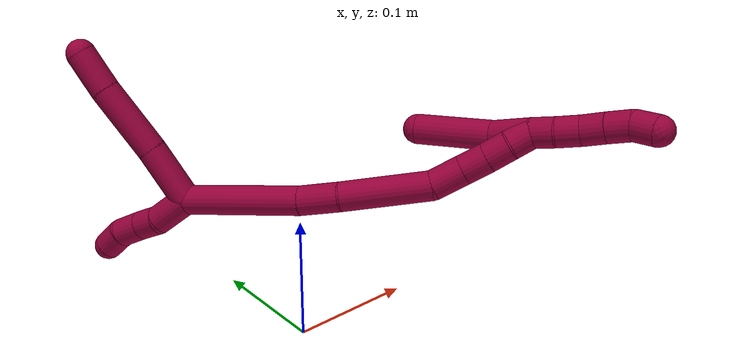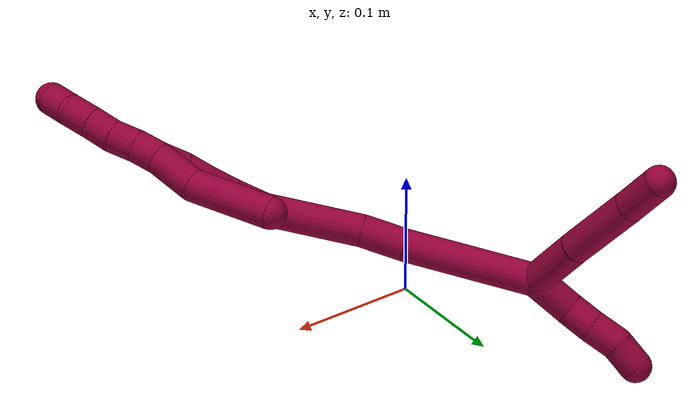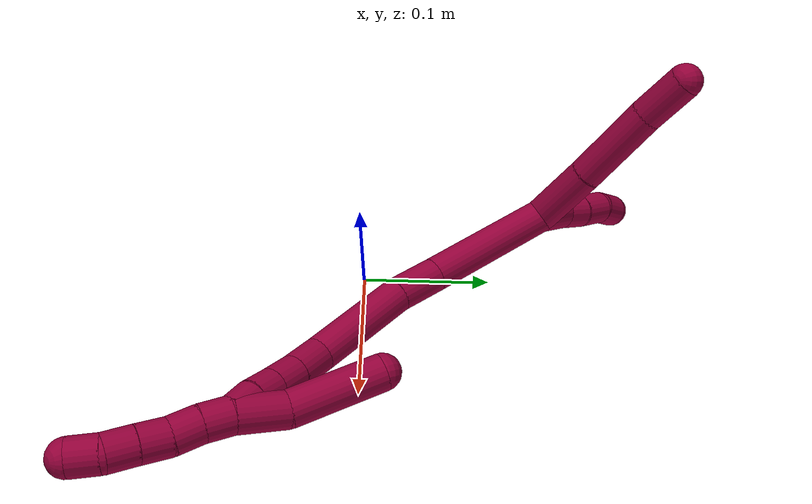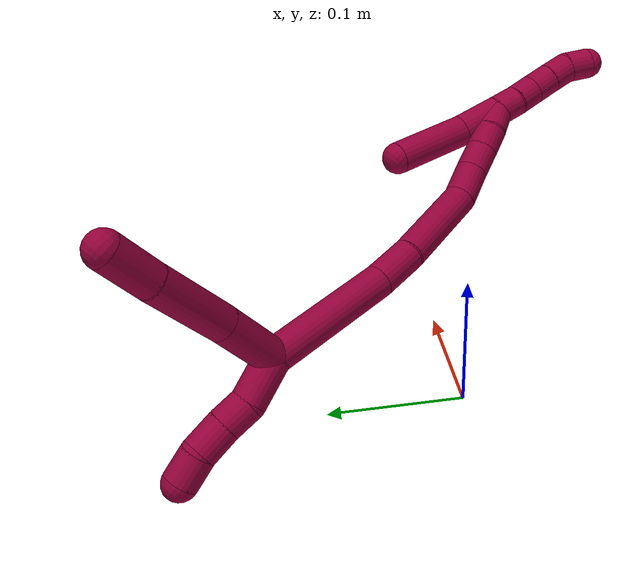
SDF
<sdf version="1.7">
 <world name="default">
  <model name="photoneo_s_sensor">
   <static>1</static>
   <pose>0 0 2 1.57079 1.57079 3.14159</pose>
   <link name="link">
    <inertial><mass>0.1</mass></inertial>
    <sensor name="sensor" type="depth">
     <update_rate>30</update_rate>
     <camera>
      <horizontal_fov>1.22</horizontal_fov>
      <image><width>1920</width><height>1200</height><format>B8G8R8</format></image>
      <clip><near>0.1</near><far>4</far></clip>
      <depth_camera><output>points</output></depth_camera>
     </camera>
     <plugin name="camera_plugin" filename="libgazebo_ros_depth_camera.so">
      <baseline>0.2</baseline>
      <alwaysOn>1</alwaysOn>
      <updateRate>0.0</updateRate>
      <cameraName>camera_ir</cameraName>
      <imageTopicName>/camera/color/image_raw</imageTopicName>
      <cameraInfoTopicName>/camera/color/camera_info</cameraInfoTopicName>
      <depthImageTopicName>/camera/depth/image_raw</depthImageTopicName>
      <depthImageCameraInfoTopicName>/camera/depth/camera_info</depthImageCameraInfoTopicName>
      <pointCloudTopicName>/camera/depth/points</pointCloudTopicName>
      <frameName>fr_optical</frameName>
      <pointCloudCutoff>0.1</pointCloudCutoff>
      <pointCloudCutoffMax>2.0</pointCloudCutoffMax>
      <distortionK1>0</distortionK1>
      <distortionK2>0</distortionK2>
      <distortionK3>0</distortionK3>
      <distortionT1>0</distortionT1>
      <distortionT2>0</distortionT2>
      <CxPrime>0</CxPrime>
      <Cx>0</Cx>
      <Cy>0</Cy>
      <focalLength>0</focalLength>
      <hackBaseline>0</hackBaseline>
     </plugin>
    </sensor>
   </link>
  </model>
  <model name="bin">
   <static>1</static>
   <link name="bottom">
    <collision name="collision-bottom">
     <pose>0 0 -0.01 0 -0 0</pose>
     <geometry><box><size>0.8 0.6 0.02</size></box></geometry>
     <surface>
      <friction><ode><mu>100</mu><mu2>100</mu2></ode></friction>
      <contact><collide_bitmask>65535</collide_bitmask></contact>
     </surface>
    </collision>
   </link>
   <link name="west_wall">
    <collision name="collision-west_wall">
     <pose>-0.41 0 0.1 0 -0 0</pose>
     <geometry><box><size>0.02 0.6 0.2</size></box></geometry>
     <surface>
      <friction><ode><mu>100</mu><mu2>100</mu2></ode></friction>
      <contact><collide_bitmask>65535</collide_bitmask></contact>
     </surface>
    </collision>
   </link>
   <link name="east_wall">
    <collision name="collision-east_wall">
     <pose>0.41 0 0.1 0 -0 0</pose>
     <geometry><box><size>0.02 0.6 0.2</size></box></geometry>
     <surface>
      <friction><ode><mu>100</mu><mu2>100</mu2></ode></friction>
      <contact><collide_bitmask>65535</collide_bitmask></contact>
     </surface>
    </collision>
   </link>
   <link name="south_wall">
    <collision name="collision-south_wall">
     <pose>0 -0.31 0.1 0 -0 0</pose>
     <geometry><box><size>0.8 0.02 0.2</size></box></geometry>
     <surface>
      <friction><ode><mu>100</mu><mu2>100</mu2></ode></friction>
      <contact><collide_bitmask>65535</collide_bitmask></contact>
     </surface>
    </collision>
   </link>
   <link name="north_wall">
    <collision name="collision-north_wall">
     <pose>0 0.31 0.1 0 -0 0</pose>
     <geometry><box><size>0.8 0.02 0.2</size></box></geometry>
     <surface>
      <friction><ode><mu>100</mu><mu2>100</mu2></ode></friction>
      <contact><collide_bitmask>65535</collide_bitmask></contact>
     </surface>
    </collision>
   </link>
  </model>
  <model name="8">
   <static>0</static>
   <link name="8">
    <collision name="collision-cylinder-e_1_2_8">
     <pose>-0.003105 0.024979 -0.003071 -1.69311 -0.122753 0.138718</pose>
     <geometry><cylinder><radius>0.0125</radius><length>0.050715</length></cylinder></geometry>
     <surface>
      <friction><ode><mu>1.16</mu><mu2>1.16</mu2><slip1>0</slip1><slip2>0</slip2></ode></friction>
      <contact><ode><kp>1e+06</kp><kd>1</kd><max_vel>0</max_vel><min_depth>0.001</min_depth></ode></contact>
     </surface>
    </collision>
    <visual name="visual-cylinder-e_1_2_8">
     <pose>-0.003105 0.024979 -0.003071 -1.69311 -0.122753 0.138718</pose>
     <geometry><cylinder><radius>0.0125</radius><length>0.050715</length></cylinder></geometry>
     <material><ambient>0.584314 0 0.227451 1</ambient></material>
    </visual>
    <collision name="collision-cylinder-e_2_8_9">
     <pose>-0.011533 0.080472 -0.011046 -1.73016 -0.17057 0.199992</pose>
     <geometry><cylinder><radius>0.0125</radius><length>0.062723</length></cylinder></geometry>
     <surface>
      <friction><ode><mu>1.16</mu><mu2>1.16</mu2><slip1>0</slip1><slip2>0</slip2></ode></friction>
      <contact><ode><kp>1e+06</kp><kd>1</kd><max_vel>0</max_vel><min_depth>0.001</min_depth></ode></contact>
     </surface>
    </collision>
    <visual name="visual-cylinder-e_2_8_9">
     <pose>-0.011533 0.080472 -0.011046 -1.73016 -0.17057 0.199992</pose>
     <geometry><cylinder><radius>0.0125</radius><length>0.062723</length></cylinder></geometry>
     <material><ambient>0.584314 0 0.227451 1</ambient></material>
    </visual>
    <collision name="collision-cylinder-e_3_9_6">
     <pose>-0.018635 0.129043 -0.01819 -1.6942 -0.097417 0.110222</pose>
     <geometry><cylinder><radius>0.0125</radius><length>0.036562</length></cylinder></geometry>
     <surface>
      <friction><ode><mu>1.16</mu><mu2>1.16</mu2><slip1>0</slip1><slip2>0</slip2></ode></friction>
      <contact><ode><kp>1e+06</kp><kd>1</kd><max_vel>0</max_vel><min_depth>0.001</min_depth></ode></contact>
     </surface>
    </collision>
    <visual name="visual-cylinder-e_3_9_6">
     <pose>-0.018635 0.129043 -0.01819 -1.6942 -0.097417 0.110222</pose>
     <geometry><cylinder><radius>0.0125</radius><length>0.036562</length></cylinder></geometry>
     <material><ambient>0.584314 0 0.227451 1</ambient></material>
    </visual>
    <collision name="collision-cylinder-e_1_2_10">
     <pose>-0.001703 -0.002845 -0.016559 2.97144 -0.100988 -1.06989</pose>
     <geometry><cylinder><radius>0.0125</radius><length>0.033775</length></cylinder></geometry>
     <surface>
      <friction><ode><mu>1.16</mu><mu2>1.16</mu2><slip1>0</slip1><slip2>0</slip2></ode></friction>
      <contact><ode><kp>1e+06</kp><kd>1</kd><max_vel>0</max_vel><min_depth>0.001</min_depth></ode></contact>
     </surface>
    </collision>
    <visual name="visual-cylinder-e_1_2_10">
     <pose>-0.001703 -0.002845 -0.016559 2.97144 -0.100988 -1.06989</pose>
     <geometry><cylinder><radius>0.0125</radius><length>0.033775</length></cylinder></geometry>
     <material><ambient>0.584314 0 0.227451 1</ambient></material>
    </visual>
    <collision name="collision-cylinder-e_2_10_11">
     <pose>-0.00249 -0.004644 -0.043396 -3.04013 0.08838 -1.433</pose>
     <geometry><cylinder><radius>0.0125</radius><length>0.020744</length></cylinder></geometry>
     <surface>
      <friction><ode><mu>1.16</mu><mu2>1.16</mu2><slip1>0</slip1><slip2>0</slip2></ode></friction>
      <contact><ode><kp>1e+06</kp><kd>1</kd><max_vel>0</max_vel><min_depth>0.001</min_depth></ode></contact>
     </surface>
    </collision>
    <visual name="visual-cylinder-e_2_10_11">
     <pose>-0.00249 -0.004644 -0.043396 -3.04013 0.08838 -1.433</pose>
     <geometry><cylinder><radius>0.0125</radius><length>0.020744</length></cylinder></geometry>
     <material><ambient>0.584314 0 0.227451 1</ambient></material>
    </visual>
    <collision name="collision-cylinder-e_3_11_12">
     <pose>-0.001808 -0.002873 -0.065358 -3.07964 -0.019988 0.624018</pose>
     <geometry><cylinder><radius>0.0125</radius><length>0.023416</length></cylinder></geometry>
     <surface>
      <friction><ode><mu>1.16</mu><mu2>1.16</mu2><slip1>0</slip1><slip2>0</slip2></ode></friction>
      <contact><ode><kp>1e+06</kp><kd>1</kd><max_vel>0</max_vel><min_depth>0.001</min_depth></ode></contact>
     </surface>
    </collision>
    <visual name="visual-cylinder-e_3_11_12">
     <pose>-0.001808 -0.002873 -0.065358 -3.07964 -0.019988 0.624018</pose>
     <geometry><cylinder><radius>0.0125</radius><length>0.023416</length></cylinder></geometry>
     <material><ambient>0.584314 0 0.227451 1</ambient></material>
    </visual>
    <collision name="collision-cylinder-e_4_12_5">
     <pose>-0.001136 -0.004664 -0.087745 2.9107 0.082217 0.681709</pose>
     <geometry><cylinder><radius>0.0125</radius><length>0.022064</length></cylinder></geometry>
     <surface>
      <friction><ode><mu>1.16</mu><mu2>1.16</mu2><slip1>0</slip1><slip2>0</slip2></ode></friction>
      <contact><ode><kp>1e+06</kp><kd>1</kd><max_vel>0</max_vel><min_depth>0.001</min_depth></ode></contact>
     </surface>
    </collision>
    <visual name="visual-cylinder-e_4_12_5">
     <pose>-0.001136 -0.004664 -0.087745 2.9107 0.082217 0.681709</pose>
     <geometry><cylinder><radius>0.0125</radius><length>0.022064</length></cylinder></geometry>
     <material><ambient>0.584314 0 0.227451 1</ambient></material>
    </visual>
    <collision name="collision-cylinder-e_1_2_13">
     <pose>0.009035 -0.020044 0.045545 0.414582 0.179606 0.037871</pose>
     <geometry><cylinder><radius>0.0125</radius><length>0.101148</length></cylinder></geometry>
     <surface>
      <friction><ode><mu>1.16</mu><mu2>1.16</mu2><slip1>0</slip1><slip2>0</slip2></ode></friction>
      <contact><ode><kp>1e+06</kp><kd>1</kd><max_vel>0</max_vel><min_depth>0.001</min_depth></ode></contact>
     </surface>
    </collision>
    <visual name="visual-cylinder-e_1_2_13">
     <pose>0.009035 -0.020044 0.045545 0.414582 0.179606 0.037871</pose>
     <geometry><cylinder><radius>0.0125</radius><length>0.101148</length></cylinder></geometry>
     <material><ambient>0.584314 0 0.227451 1</ambient></material>
    </visual>
    <collision name="collision-cylinder-e_2_13_14">
     <pose>0.021239 -0.045249 0.107149 0.31099 0.185748 0.0292</pose>
     <geometry><cylinder><radius>0.0125</radius><length>0.034327</length></cylinder></geometry>
     <surface>
      <friction><ode><mu>1.16</mu><mu2>1.16</mu2><slip1>0</slip1><slip2>0</slip2></ode></friction>
      <contact><ode><kp>1e+06</kp><kd>1</kd><max_vel>0</max_vel><min_depth>0.001</min_depth></ode></contact>
     </surface>
    </collision>
    <visual name="visual-cylinder-e_2_13_14">
     <pose>0.021239 -0.045249 0.107149 0.31099 0.185748 0.0292</pose>
     <geometry><cylinder><radius>0.0125</radius><length>0.034327</length></cylinder></geometry>
     <material><ambient>0.584314 0 0.227451 1</ambient></material>
    </visual>
    <collision name="collision-cylinder-e_3_14_15">
     <pose>0.03659 -0.06146 0.157152 0.314696 0.328845 0.052637</pose>
     <geometry><cylinder><radius>0.0125</radius><length>0.075436</length></cylinder></geometry>
     <surface>
      <friction><ode><mu>1.16</mu><mu2>1.16</mu2><slip1>0</slip1><slip2>0</slip2></ode></friction>
      <contact><ode><kp>1e+06</kp><kd>1</kd><max_vel>0</max_vel><min_depth>0.001</min_depth></ode></contact>
     </surface>
    </collision>
    <visual name="visual-cylinder-e_3_14_15">
     <pose>0.03659 -0.06146 0.157152 0.314696 0.328845 0.052637</pose>
     <geometry><cylinder><radius>0.0125</radius><length>0.075436</length></cylinder></geometry>
     <material><ambient>0.584314 0 0.227451 1</ambient></material>
    </visual>
    <collision name="collision-cylinder-e_4_15_16">
     <pose>0.053272 -0.071852 0.203988 -0.050917 0.335499 -0.008624</pose>
     <geometry><cylinder><radius>0.0125</radius><length>0.027342</length></cylinder></geometry>
     <surface>
      <friction><ode><mu>1.16</mu><mu2>1.16</mu2><slip1>0</slip1><slip2>0</slip2></ode></friction>
      <contact><ode><kp>1e+06</kp><kd>1</kd><max_vel>0</max_vel><min_depth>0.001</min_depth></ode></contact>
     </surface>
    </collision>
    <visual name="visual-cylinder-e_4_15_16">
     <pose>0.053272 -0.071852 0.203988 -0.050917 0.335499 -0.008624</pose>
     <geometry><cylinder><radius>0.0125</radius><length>0.027342</length></cylinder></geometry>
     <material><ambient>0.584314 0 0.227451 1</ambient></material>
    </visual>
    <collision name="collision-cylinder-e_5_16_17">
     <pose>0.060757 -0.070573 0.227312 -0.059578 0.27811 -0.008341</pose>
     <geometry><cylinder><radius>0.0125</radius><length>0.021735</length></cylinder></geometry>
     <surface>
      <friction><ode><mu>1.16</mu><mu2>1.16</mu2><slip1>0</slip1><slip2>0</slip2></ode></friction>
      <contact><ode><kp>1e+06</kp><kd>1</kd><max_vel>0</max_vel><min_depth>0.001</min_depth></ode></contact>
     </surface>
    </collision>
    <visual name="visual-cylinder-e_5_16_17">
     <pose>0.060757 -0.070573 0.227312 -0.059578 0.27811 -0.008341</pose>
     <geometry><cylinder><radius>0.0125</radius><length>0.021735</length></cylinder></geometry>
     <material><ambient>0.584314 0 0.227451 1</ambient></material>
    </visual>
    <collision name="collision-cylinder-e_6_17_18">
     <pose>0.066285 -0.069001 0.247372 -0.098349 0.257205 -0.012728</pose>
     <geometry><cylinder><radius>0.0125</radius><length>0.020009</length></cylinder></geometry>
     <surface>
      <friction><ode><mu>1.16</mu><mu2>1.16</mu2><slip1>0</slip1><slip2>0</slip2></ode></friction>
      <contact><ode><kp>1e+06</kp><kd>1</kd><max_vel>0</max_vel><min_depth>0.001</min_depth></ode></contact>
     </surface>
    </collision>
    <visual name="visual-cylinder-e_6_17_18">
     <pose>0.066285 -0.069001 0.247372 -0.098349 0.257205 -0.012728</pose>
     <geometry><cylinder><radius>0.0125</radius><length>0.020009</length></cylinder></geometry>
     <material><ambient>0.584314 0 0.227451 1</ambient></material>
    </visual>
    <collision name="collision-cylinder-e_7_18_1">
     <pose>0.072719 -0.067209 0.266176 -0.091439 0.399357 -0.018517</pose>
     <geometry><cylinder><radius>0.0125</radius><length>0.020003</length></cylinder></geometry>
     <surface>
      <friction><ode><mu>1.16</mu><mu2>1.16</mu2><slip1>0</slip1><slip2>0</slip2></ode></friction>
      <contact><ode><kp>1e+06</kp><kd>1</kd><max_vel>0</max_vel><min_depth>0.001</min_depth></ode></contact>
     </surface>
    </collision>
    <visual name="visual-cylinder-e_7_18_1">
     <pose>0.072719 -0.067209 0.266176 -0.091439 0.399357 -0.018517</pose>
     <geometry><cylinder><radius>0.0125</radius><length>0.020003</length></cylinder></geometry>
     <material><ambient>0.584314 0 0.227451 1</ambient></material>
    </visual>
    <collision name="collision-cylinder-e_1_1_19">
     <pose>0.076016 -0.069771 0.284737 0.347892 -0.059155 -0.010398</pose>
     <geometry><cylinder><radius>0.0125</radius><length>0.02</length></cylinder></geometry>
     <surface>
      <friction><ode><mu>1.16</mu><mu2>1.16</mu2><slip1>0</slip1><slip2>0</slip2></ode></friction>
      <contact><ode><kp>1e+06</kp><kd>1</kd><max_vel>0</max_vel><min_depth>0.001</min_depth></ode></contact>
     </surface>
    </collision>
    <visual name="visual-cylinder-e_1_1_19">
     <pose>0.076016 -0.069771 0.284737 0.347892 -0.059155 -0.010398</pose>
     <geometry><cylinder><radius>0.0125</radius><length>0.02</length></cylinder></geometry>
     <material><ambient>0.584314 0 0.227451 1</ambient></material>
    </visual>
    <collision name="collision-cylinder-e_2_19_20">
     <pose>0.07614 -0.076488 0.303529 0.338593 0.071512 0.012229</pose>
     <geometry><cylinder><radius>0.0125</radius><length>0.02</length></cylinder></geometry>
     <surface>
      <friction><ode><mu>1.16</mu><mu2>1.16</mu2><slip1>0</slip1><slip2>0</slip2></ode></friction>
      <contact><ode><kp>1e+06</kp><kd>1</kd><max_vel>0</max_vel><min_depth>0.001</min_depth></ode></contact>
     </surface>
    </collision>
    <visual name="visual-cylinder-e_2_19_20">
     <pose>0.07614 -0.076488 0.303529 0.338593 0.071512 0.012229</pose>
     <geometry><cylinder><radius>0.0125</radius><length>0.02</length></cylinder></geometry>
     <material><ambient>0.584314 0 0.227451 1</ambient></material>
    </visual>
    <collision name="collision-cylinder-e_3_20_21">
     <pose>0.076076 -0.082411 0.322559 0.264896 -0.077875 -0.01038</pose>
     <geometry><cylinder><radius>0.0125</radius><length>0.02</length></cylinder></geometry>
     <surface>
      <friction><ode><mu>1.16</mu><mu2>1.16</mu2><slip1>0</slip1><slip2>0</slip2></ode></friction>
      <contact><ode><kp>1e+06</kp><kd>1</kd><max_vel>0</max_vel><min_depth>0.001</min_depth></ode></contact>
     </surface>
    </collision>
    <visual name="visual-cylinder-e_3_20_21">
     <pose>0.076076 -0.082411 0.322559 0.264896 -0.077875 -0.01038</pose>
     <geometry><cylinder><radius>0.0125</radius><length>0.02</length></cylinder></geometry>
     <material><ambient>0.584314 0 0.227451 1</ambient></material>
    </visual>
    <collision name="collision-cylinder-e_4_21_22">
     <pose>0.074682 -0.087902 0.341737 0.292844 -0.06168 -0.009099</pose>
     <geometry><cylinder><radius>0.0125</radius><length>0.02</length></cylinder></geometry>
     <surface>
      <friction><ode><mu>1.16</mu><mu2>1.16</mu2><slip1>0</slip1><slip2>0</slip2></ode></friction>
      <contact><ode><kp>1e+06</kp><kd>1</kd><max_vel>0</max_vel><min_depth>0.001</min_depth></ode></contact>
     </surface>
    </collision>
    <visual name="visual-cylinder-e_4_21_22">
     <pose>0.074682 -0.087902 0.341737 0.292844 -0.06168 -0.009099</pose>
     <geometry><cylinder><radius>0.0125</radius><length>0.02</length></cylinder></geometry>
     <material><ambient>0.584314 0 0.227451 1</ambient></material>
    </visual>
    <collision name="collision-cylinder-e_5_22_4">
     <pose>0.071334 -0.095883 0.35945 0.558745 -0.276643 -0.07983</pose>
     <geometry><cylinder><radius>0.0125</radius><length>0.02</length></cylinder></geometry>
     <surface>
      <friction><ode><mu>1.16</mu><mu2>1.16</mu2><slip1>0</slip1><slip2>0</slip2></ode></friction>
      <contact><ode><kp>1e+06</kp><kd>1</kd><max_vel>0</max_vel><min_depth>0.001</min_depth></ode></contact>
     </surface>
    </collision>
    <visual name="visual-cylinder-e_5_22_4">
     <pose>0.071334 -0.095883 0.35945 0.558745 -0.276643 -0.07983</pose>
     <geometry><cylinder><radius>0.0125</radius><length>0.02</length></cylinder></geometry>
     <material><ambient>0.584314 0 0.227451 1</ambient></material>
    </visual>
    <collision name="collision-cylinder-e_1_1_23">
     <pose>0.080379 -0.061531 0.259016 -2.85371 0.217855 -1.29276</pose>
     <geometry><cylinder><radius>0.0125</radius><length>0.034899</length></cylinder></geometry>
     <surface>
      <friction><ode><mu>1.16</mu><mu2>1.16</mu2><slip1>0</slip1><slip2>0</slip2></ode></friction>
      <contact><ode><kp>1e+06</kp><kd>1</kd><max_vel>0</max_vel><min_depth>0.001</min_depth></ode></contact>
     </surface>
    </collision>
    <visual name="visual-cylinder-e_1_1_23">
     <pose>0.080379 -0.061531 0.259016 -2.85371 0.217855 -1.29276</pose>
     <geometry><cylinder><radius>0.0125</radius><length>0.034899</length></cylinder></geometry>
     <material><ambient>0.584314 0 0.227451 1</ambient></material>
    </visual>
    <collision name="collision-cylinder-e_2_23_3">
     <pose>0.083603 -0.041713 0.213787 -2.66327 -0.016829 0.068992</pose>
     <geometry><cylinder><radius>0.0125</radius><length>0.065101</length></cylinder></geometry>
     <surface>
      <friction><ode><mu>1.16</mu><mu2>1.16</mu2><slip1>0</slip1><slip2>0</slip2></ode></friction>
      <contact><ode><kp>1e+06</kp><kd>1</kd><max_vel>0</max_vel><min_depth>0.001</min_depth></ode></contact>
     </surface>
    </collision>
    <visual name="visual-cylinder-e_2_23_3">
     <pose>0.083603 -0.041713 0.213787 -2.66327 -0.016829 0.068992</pose>
     <geometry><cylinder><radius>0.0125</radius><length>0.065101</length></cylinder></geometry>
     <material><ambient>0.584314 0 0.227451 1</ambient></material>
    </visual>
    <collision name="collision-sphere-3">
     <pose>0.083055 -0.026732 0.184894 0 -0 0</pose>
     <geometry><sphere><radius>0.0125</radius></sphere></geometry>
     <surface>
      <friction><ode><mu>1.16</mu><mu2>1.16</mu2><slip1>0</slip1><slip2>0</slip2></ode></friction>
      <contact><ode><kp>1e+06</kp><kd>1</kd><max_vel>0</max_vel><min_depth>0.001</min_depth></ode></contact>
     </surface>
    </collision>
    <visual name="visual-sphere-3">
     <pose>0.083055 -0.026732 0.184894 0 -0 0</pose>
     <geometry><sphere><radius>0.0125</radius></sphere></geometry>
     <material><ambient>0.584314 0 0.227451 1</ambient></material>
    </visual>
    <collision name="collision-sphere-23">
     <pose>0.08415 -0.056694 0.242681 0 -0 0</pose>
     <geometry><sphere><radius>0.0125</radius></sphere></geometry>
     <surface>
      <friction><ode><mu>1.16</mu><mu2>1.16</mu2><slip1>0</slip1><slip2>0</slip2></ode></friction>
      <contact><ode><kp>1e+06</kp><kd>1</kd><max_vel>0</max_vel><min_depth>0.001</min_depth></ode></contact>
     </surface>
    </collision>
    <visual name="visual-sphere-23">
     <pose>0.08415 -0.056694 0.242681 0 -0 0</pose>
     <geometry><sphere><radius>0.0125</radius></sphere></geometry>
     <material><ambient>0.584314 0 0.227451 1</ambient></material>
    </visual>
    <collision name="collision-sphere-4">
     <pose>0.068603 -0.100983 0.367607 0 -0 0</pose>
     <geometry><sphere><radius>0.0125</radius></sphere></geometry>
     <surface>
      <friction><ode><mu>1.16</mu><mu2>1.16</mu2><slip1>0</slip1><slip2>0</slip2></ode></friction>
      <contact><ode><kp>1e+06</kp><kd>1</kd><max_vel>0</max_vel><min_depth>0.001</min_depth></ode></contact>
     </surface>
    </collision>
    <visual name="visual-sphere-4">
     <pose>0.068603 -0.100983 0.367607 0 -0 0</pose>
     <geometry><sphere><radius>0.0125</radius></sphere></geometry>
     <material><ambient>0.584314 0 0.227451 1</ambient></material>
    </visual>
    <collision name="collision-sphere-22">
     <pose>0.074065 -0.090784 0.351293 0 -0 0</pose>
     <geometry><sphere><radius>0.0125</radius></sphere></geometry>
     <surface>
      <friction><ode><mu>1.16</mu><mu2>1.16</mu2><slip1>0</slip1><slip2>0</slip2></ode></friction>
      <contact><ode><kp>1e+06</kp><kd>1</kd><max_vel>0</max_vel><min_depth>0.001</min_depth></ode></contact>
     </surface>
    </collision>
    <visual name="visual-sphere-22">
     <pose>0.074065 -0.090784 0.351293 0 -0 0</pose>
     <geometry><sphere><radius>0.0125</radius></sphere></geometry>
     <material><ambient>0.584314 0 0.227451 1</ambient></material>
    </visual>
    <collision name="collision-sphere-21">
     <pose>0.075298 -0.085021 0.332181 0 -0 0</pose>
     <geometry><sphere><radius>0.0125</radius></sphere></geometry>
     <surface>
      <friction><ode><mu>1.16</mu><mu2>1.16</mu2><slip1>0</slip1><slip2>0</slip2></ode></friction>
      <contact><ode><kp>1e+06</kp><kd>1</kd><max_vel>0</max_vel><min_depth>0.001</min_depth></ode></contact>
     </surface>
    </collision>
    <visual name="visual-sphere-21">
     <pose>0.075298 -0.085021 0.332181 0 -0 0</pose>
     <geometry><sphere><radius>0.0125</radius></sphere></geometry>
     <material><ambient>0.584314 0 0.227451 1</ambient></material>
    </visual>
    <collision name="collision-sphere-20">
     <pose>0.076854 -0.079801 0.312937 0 -0 0</pose>
     <geometry><sphere><radius>0.0125</radius></sphere></geometry>
     <surface>
      <friction><ode><mu>1.16</mu><mu2>1.16</mu2><slip1>0</slip1><slip2>0</slip2></ode></friction>
      <contact><ode><kp>1e+06</kp><kd>1</kd><max_vel>0</max_vel><min_depth>0.001</min_depth></ode></contact>
     </surface>
    </collision>
    <visual name="visual-sphere-20">
     <pose>0.076854 -0.079801 0.312937 0 -0 0</pose>
     <geometry><sphere><radius>0.0125</radius></sphere></geometry>
     <material><ambient>0.584314 0 0.227451 1</ambient></material>
    </visual>
    <collision name="collision-sphere-11">
     <pose>-0.001574 -0.003597 -0.053675 0 -0 0</pose>
     <geometry><sphere><radius>0.0125</radius></sphere></geometry>
     <surface>
      <friction><ode><mu>1.16</mu><mu2>1.16</mu2><slip1>0</slip1><slip2>0</slip2></ode></friction>
      <contact><ode><kp>1e+06</kp><kd>1</kd><max_vel>0</max_vel><min_depth>0.001</min_depth></ode></contact>
     </surface>
    </collision>
    <visual name="visual-sphere-11">
     <pose>-0.001574 -0.003597 -0.053675 0 -0 0</pose>
     <geometry><sphere><radius>0.0125</radius></sphere></geometry>
     <material><ambient>0.584314 0 0.227451 1</ambient></material>
    </visual>
    <collision name="collision-sphere-10">
     <pose>-0.003405 -0.00569 -0.033118 0 -0 0</pose>
     <geometry><sphere><radius>0.0125</radius></sphere></geometry>
     <surface>
      <friction><ode><mu>1.16</mu><mu2>1.16</mu2><slip1>0</slip1><slip2>0</slip2></ode></friction>
      <contact><ode><kp>1e+06</kp><kd>1</kd><max_vel>0</max_vel><min_depth>0.001</min_depth></ode></contact>
     </surface>
    </collision>
    <visual name="visual-sphere-10">
     <pose>-0.003405 -0.00569 -0.033118 0 -0 0</pose>
     <geometry><sphere><radius>0.0125</radius></sphere></geometry>
     <material><ambient>0.584314 0 0.227451 1</ambient></material>
    </visual>
    <collision name="collision-sphere-6">
     <pose>-0.020413 0.147099 -0.02043 0 -0 0</pose>
     <geometry><sphere><radius>0.0125</radius></sphere></geometry>
     <surface>
      <friction><ode><mu>1.16</mu><mu2>1.16</mu2><slip1>0</slip1><slip2>0</slip2></ode></friction>
      <contact><ode><kp>1e+06</kp><kd>1</kd><max_vel>0</max_vel><min_depth>0.001</min_depth></ode></contact>
     </surface>
    </collision>
    <visual name="visual-sphere-6">
     <pose>-0.020413 0.147099 -0.02043 0 -0 0</pose>
     <geometry><sphere><radius>0.0125</radius></sphere></geometry>
     <material><ambient>0.584314 0 0.227451 1</ambient></material>
    </visual>
    <collision name="collision-sphere-9">
     <pose>-0.016857 0.110986 -0.01595 0 -0 0</pose>
     <geometry><sphere><radius>0.0125</radius></sphere></geometry>
     <surface>
      <friction><ode><mu>1.16</mu><mu2>1.16</mu2><slip1>0</slip1><slip2>0</slip2></ode></friction>
      <contact><ode><kp>1e+06</kp><kd>1</kd><max_vel>0</max_vel><min_depth>0.001</min_depth></ode></contact>
     </surface>
    </collision>
    <visual name="visual-sphere-9">
     <pose>-0.016857 0.110986 -0.01595 0 -0 0</pose>
     <geometry><sphere><radius>0.0125</radius></sphere></geometry>
     <material><ambient>0.584314 0 0.227451 1</ambient></material>
    </visual>
    <collision name="collision-sphere-2">
     <geometry><sphere><radius>0.0125</radius></sphere></geometry>
     <surface>
      <friction><ode><mu>1.16</mu><mu2>1.16</mu2><slip1>0</slip1><slip2>0</slip2></ode></friction>
      <contact><ode><kp>1e+06</kp><kd>1</kd><max_vel>0</max_vel><min_depth>0.001</min_depth></ode></contact>
     </surface>
    </collision>
    <visual name="visual-sphere-2">
     <geometry><sphere><radius>0.0125</radius></sphere></geometry>
     <material><ambient>0.584314 0 0.227451 1</ambient></material>
    </visual>
    <collision name="collision-sphere-19">
     <pose>0.075425 -0.073175 0.294121 0 -0 0</pose>
     <geometry><sphere><radius>0.0125</radius></sphere></geometry>
     <surface>
      <friction><ode><mu>1.16</mu><mu2>1.16</mu2><slip1>0</slip1><slip2>0</slip2></ode></friction>
      <contact><ode><kp>1e+06</kp><kd>1</kd><max_vel>0</max_vel><min_depth>0.001</min_depth></ode></contact>
     </surface>
    </collision>
    <visual name="visual-sphere-19">
     <pose>0.075425 -0.073175 0.294121 0 -0 0</pose>
     <geometry><sphere><radius>0.0125</radius></sphere></geometry>
     <material><ambient>0.584314 0 0.227451 1</ambient></material>
    </visual>
    <collision name="collision-sphere-8">
     <pose>-0.00621 0.049957 -0.006141 0 -0 0</pose>
     <geometry><sphere><radius>0.0125</radius></sphere></geometry>
     <surface>
      <friction><ode><mu>1.16</mu><mu2>1.16</mu2><slip1>0</slip1><slip2>0</slip2></ode></friction>
      <contact><ode><kp>1e+06</kp><kd>1</kd><max_vel>0</max_vel><min_depth>0.001</min_depth></ode></contact>
     </surface>
    </collision>
    <visual name="visual-sphere-8">
     <pose>-0.00621 0.049957 -0.006141 0 -0 0</pose>
     <geometry><sphere><radius>0.0125</radius></sphere></geometry>
     <material><ambient>0.584314 0 0.227451 1</ambient></material>
    </visual>
    <collision name="collision-sphere-12">
     <pose>-0.002042 -0.002148 -0.077042 0 -0 0</pose>
     <geometry><sphere><radius>0.0125</radius></sphere></geometry>
     <surface>
      <friction><ode><mu>1.16</mu><mu2>1.16</mu2><slip1>0</slip1><slip2>0</slip2></ode></friction>
      <contact><ode><kp>1e+06</kp><kd>1</kd><max_vel>0</max_vel><min_depth>0.001</min_depth></ode></contact>
     </surface>
    </collision>
    <visual name="visual-sphere-12">
     <pose>-0.002042 -0.002148 -0.077042 0 -0 0</pose>
     <geometry><sphere><radius>0.0125</radius></sphere></geometry>
     <material><ambient>0.584314 0 0.227451 1</ambient></material>
    </visual>
    <collision name="collision-sphere-5">
     <pose>-0.00023 -0.00718 -0.098448 0 -0 0</pose>
     <geometry><sphere><radius>0.0125</radius></sphere></geometry>
     <surface>
      <friction><ode><mu>1.16</mu><mu2>1.16</mu2><slip1>0</slip1><slip2>0</slip2></ode></friction>
      <contact><ode><kp>1e+06</kp><kd>1</kd><max_vel>0</max_vel><min_depth>0.001</min_depth></ode></contact>
     </surface>
    </collision>
    <visual name="visual-sphere-5">
     <pose>-0.00023 -0.00718 -0.098448 0 -0 0</pose>
     <geometry><sphere><radius>0.0125</radius></sphere></geometry>
     <material><ambient>0.584314 0 0.227451 1</ambient></material>
    </visual>
    <collision name="collision-sphere-13">
     <pose>0.018069 -0.040088 0.09109 0 -0 0</pose>
     <geometry><sphere><radius>0.0125</radius></sphere></geometry>
     <surface>
      <friction><ode><mu>1.16</mu><mu2>1.16</mu2><slip1>0</slip1><slip2>0</slip2></ode></friction>
      <contact><ode><kp>1e+06</kp><kd>1</kd><max_vel>0</max_vel><min_depth>0.001</min_depth></ode></contact>
     </surface>
    </collision>
    <visual name="visual-sphere-13">
     <pose>0.018069 -0.040088 0.09109 0 -0 0</pose>
     <geometry><sphere><radius>0.0125</radius></sphere></geometry>
     <material><ambient>0.584314 0 0.227451 1</ambient></material>
    </visual>
    <collision name="collision-sphere-14">
     <pose>0.024409 -0.050411 0.123208 0 -0 0</pose>
     <geometry><sphere><radius>0.0125</radius></sphere></geometry>
     <surface>
      <friction><ode><mu>1.16</mu><mu2>1.16</mu2><slip1>0</slip1><slip2>0</slip2></ode></friction>
      <contact><ode><kp>1e+06</kp><kd>1</kd><max_vel>0</max_vel><min_depth>0.001</min_depth></ode></contact>
     </surface>
    </collision>
    <visual name="visual-sphere-14">
     <pose>0.024409 -0.050411 0.123208 0 -0 0</pose>
     <geometry><sphere><radius>0.0125</radius></sphere></geometry>
     <material><ambient>0.584314 0 0.227451 1</ambient></material>
    </visual>
    <collision name="collision-sphere-15">
     <pose>0.048771 -0.072509 0.191096 0 -0 0</pose>
     <geometry><sphere><radius>0.0125</radius></sphere></geometry>
     <surface>
      <friction><ode><mu>1.16</mu><mu2>1.16</mu2><slip1>0</slip1><slip2>0</slip2></ode></friction>
      <contact><ode><kp>1e+06</kp><kd>1</kd><max_vel>0</max_vel><min_depth>0.001</min_depth></ode></contact>
     </surface>
    </collision>
    <visual name="visual-sphere-15">
     <pose>0.048771 -0.072509 0.191096 0 -0 0</pose>
     <geometry><sphere><radius>0.0125</radius></sphere></geometry>
     <material><ambient>0.584314 0 0.227451 1</ambient></material>
    </visual>
    <collision name="collision-sphere-16">
     <pose>0.057773 -0.071195 0.21688 0 -0 0</pose>
     <geometry><sphere><radius>0.0125</radius></sphere></geometry>
     <surface>
      <friction><ode><mu>1.16</mu><mu2>1.16</mu2><slip1>0</slip1><slip2>0</slip2></ode></friction>
      <contact><ode><kp>1e+06</kp><kd>1</kd><max_vel>0</max_vel><min_depth>0.001</min_depth></ode></contact>
     </surface>
    </collision>
    <visual name="visual-sphere-16">
     <pose>0.057773 -0.071195 0.21688 0 -0 0</pose>
     <geometry><sphere><radius>0.0125</radius></sphere></geometry>
     <material><ambient>0.584314 0 0.227451 1</ambient></material>
    </visual>
    <collision name="collision-sphere-17">
     <pose>0.06374 -0.069951 0.237743 0 -0 0</pose>
     <geometry><sphere><radius>0.0125</radius></sphere></geometry>
     <surface>
      <friction><ode><mu>1.16</mu><mu2>1.16</mu2><slip1>0</slip1><slip2>0</slip2></ode></friction>
      <contact><ode><kp>1e+06</kp><kd>1</kd><max_vel>0</max_vel><min_depth>0.001</min_depth></ode></contact>
     </surface>
    </collision>
    <visual name="visual-sphere-17">
     <pose>0.06374 -0.069951 0.237743 0 -0 0</pose>
     <geometry><sphere><radius>0.0125</radius></sphere></geometry>
     <material><ambient>0.584314 0 0.227451 1</ambient></material>
    </visual>
    <collision name="collision-sphere-18">
     <pose>0.06883 -0.068051 0.257 0 -0 0</pose>
     <geometry><sphere><radius>0.0125</radius></sphere></geometry>
     <surface>
      <friction><ode><mu>1.16</mu><mu2>1.16</mu2><slip1>0</slip1><slip2>0</slip2></ode></friction>
      <contact><ode><kp>1e+06</kp><kd>1</kd><max_vel>0</max_vel><min_depth>0.001</min_depth></ode></contact>
     </surface>
    </collision>
    <visual name="visual-sphere-18">
     <pose>0.06883 -0.068051 0.257 0 -0 0</pose>
     <geometry><sphere><radius>0.0125</radius></sphere></geometry>
     <material><ambient>0.584314 0 0.227451 1</ambient></material>
    </visual>
    <collision name="collision-sphere-1">
     <pose>0.076608 -0.066368 0.275352 0 -0 0</pose>
     <geometry><sphere><radius>0.0125</radius></sphere></geometry>
     <surface>
      <friction><ode><mu>1.16</mu><mu2>1.16</mu2><slip1>0</slip1><slip2>0</slip2></ode></friction>
      <contact><ode><kp>1e+06</kp><kd>1</kd><max_vel>0</max_vel><min_depth>0.001</min_depth></ode></contact>
     </surface>
    </collision>
    <visual name="visual-sphere-1">
     <pose>0.076608 -0.066368 0.275352 0 -0 0</pose>
     <geometry><sphere><radius>0.0125</radius></sphere></geometry>
     <material><ambient>0.584314 0 0.227451 1</ambient></material>
    </visual>
    <inertial>
     <pose>0.03194 -0.02251 0.119586 0 -0 0</pose>
     <mass>0.75</mass>
     <inertia>
      <ixx>0.000227</ixx>
      <ixy>0</ixy>
      <ixz>0</ixz>
      <iyy>0.000117</iyy>
      <iyz>0</iyz>
      <izz>-1.5e-05</izz>
     </inertia>
    </inertial>
   </link>
   <pose>-0.019472 0.135295 0.071123 1.00068 0.201418 0.436833</pose>
  </model>
 </world>
</sdf>
